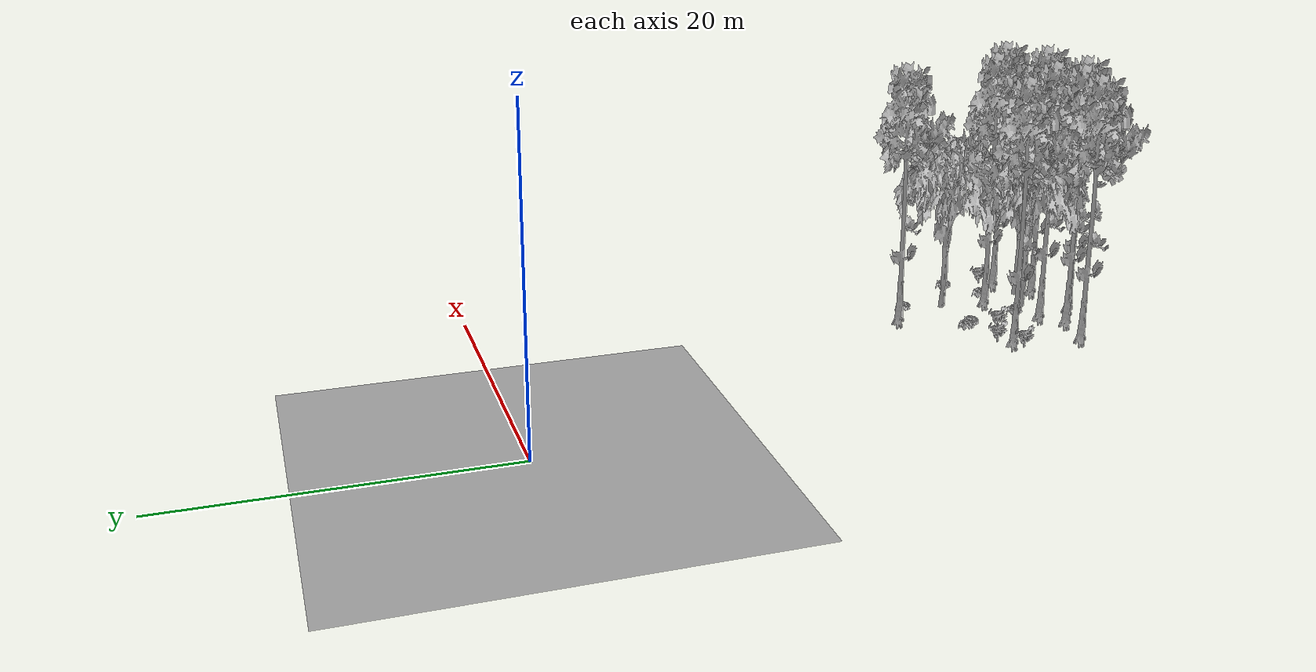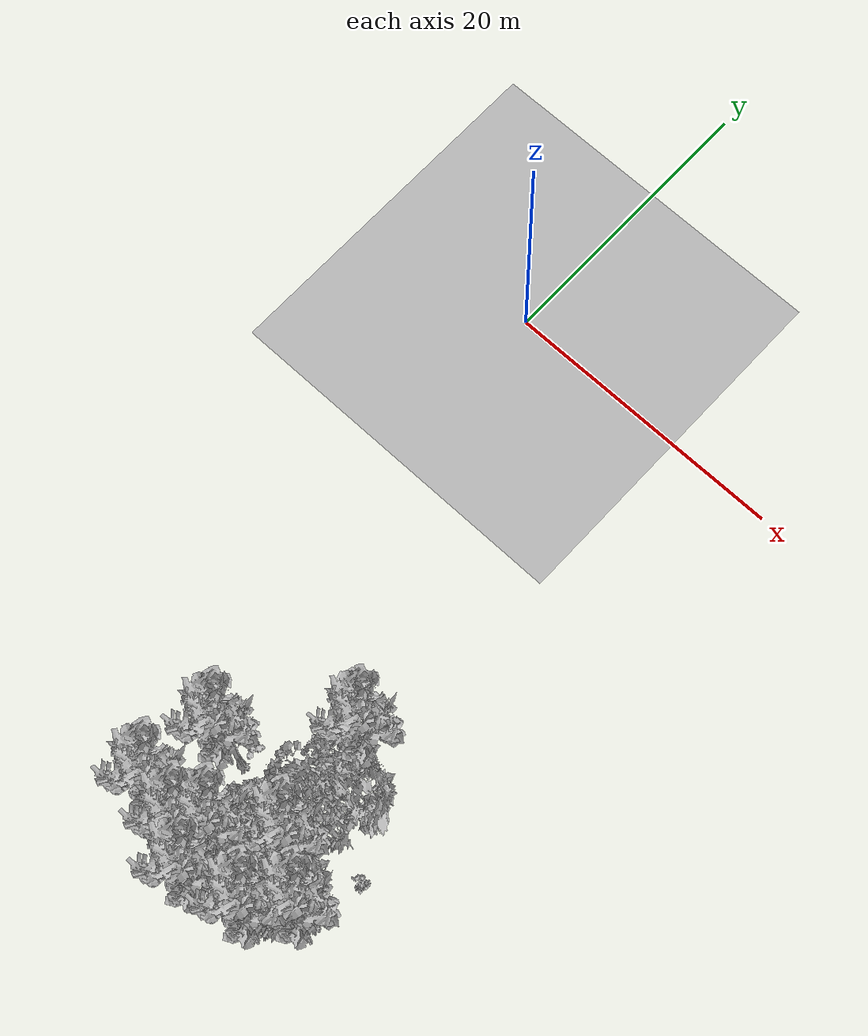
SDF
<sdf version="1.7">
 <world name="default">
  <model name="ground_plane">
   <static>1</static>
   <link name="link">
    <collision name="collision">
     <pose>-50 0 0 0 -0 0</pose>
     <geometry><plane><normal>0 0 1</normal><size>80 80</size></plane></geometry>
     <surface><contact><ode><min_depth>0.01</min_depth><max_vel>0</max_vel></ode></contact></surface>
    </collision>
    <visual name="grass">
     <cast_shadows>0</cast_shadows>
     <geometry>
      <mesh>
       <scale>0.46714285714285714 0.46714285714285714 0.1</scale>
       <uri>file://grass_plane/meshes/grass_plane.dae</uri>
      </mesh>
     </geometry>
    </visual>
   </link>
  </model>
  <model name="Tree 16">
   <static>1</static>
   <pose>16.97326211965948 -37.28798315173271 0 1.57079 -0 0</pose>
   <link name="link">
    <collision name="collision">
     <geometry><mesh><scale>3.5 5 3.5</scale><uri>model://tree_9/meshes/tree_9.obj</uri></mesh></geometry>
    </collision>
    <visual name="visual">
     <geometry><mesh><scale>3.5 5 3.5</scale><uri>model://tree_9/meshes/tree_9.obj</uri></mesh></geometry>
    </visual>
   </link>
  </model>
  <model name="Tree 31">
   <static>1</static>
   <pose>9.144035981788548 -38.37548184448518 0 1.57079 -0 0</pose>
   <link name="link">
    <collision name="collision">
     <geometry><mesh><scale>3.5 5 3.5</scale><uri>model://tree_9/meshes/tree_9.obj</uri></mesh></geometry>
    </collision>
    <visual name="visual">
     <geometry><mesh><scale>3.5 5 3.5</scale><uri>model://tree_9/meshes/tree_9.obj</uri></mesh></geometry>
    </visual>
   </link>
  </model>
  <model name="Tree 102">
   <static>1</static>
   <pose>12.106028545086744 -36.79047699876985 0 1.57079 -0 0</pose>
   <link name="link">
    <collision name="collision">
     <geometry><mesh><scale>3.5 5 3.5</scale><uri>model://tree_2/meshes/tree_2.obj</uri></mesh></geometry>
    </collision>
    <visual name="visual">
     <geometry><mesh><scale>3.5 5 3.5</scale><uri>model://tree_2/meshes/tree_2.obj</uri></mesh></geometry>
    </visual>
   </link>
  </model>
  <model name="Tree 195">
   <static>1</static>
   <pose>12.796358621361911 -27.912976611244087 0 1.57079 -0 0</pose>
   <link name="link">
    <collision name="collision">
     <geometry><mesh><scale>3.5 5 3.5</scale><uri>model://tree_9/meshes/tree_9.obj</uri></mesh></geometry>
    </collision>
    <visual name="visual">
     <geometry><mesh><scale>3.5 5 3.5</scale><uri>model://tree_9/meshes/tree_9.obj</uri></mesh></geometry>
    </visual>
   </link>
  </model>
  <model name="Tree 211">
   <static>1</static>
   <pose>14.915278013804773 -39.16089931412495 0 1.57079 -0 0</pose>
   <link name="link">
    <collision name="collision">
     <geometry><mesh><scale>3.5 5 3.5</scale><uri>model://tree_9/meshes/tree_9.obj</uri></mesh></geometry>
    </collision>
    <visual name="visual">
     <geometry><mesh><scale>3.5 5 3.5</scale><uri>model://tree_9/meshes/tree_9.obj</uri></mesh></geometry>
    </visual>
   </link>
  </model>
  <model name="Tree 221">
   <static>1</static>
   <pose>10.540902895440567 -37.217783714702186 0 1.57079 -0 0</pose>
   <link name="link">
    <collision name="collision">
     <geometry><mesh><scale>3.5 5 3.5</scale><uri>model://tree_9/meshes/tree_9.obj</uri></mesh></geometry>
    </collision>
    <visual name="visual">
     <geometry><mesh><scale>3.5 5 3.5</scale><uri>model://tree_9/meshes/tree_9.obj</uri></mesh></geometry>
    </visual>
   </link>
  </model>
  <model name="Tree 338">
   <static>1</static>
   <pose>13.005046432466365 -37.24556397848182 0 1.57079 -0 0</pose>
   <link name="link">
    <collision name="collision">
     <geometry><mesh><scale>3.5 5 3.5</scale><uri>model://tree_2/meshes/tree_2.obj</uri></mesh></geometry>
    </collision>
    <visual name="visual">
     <geometry><mesh><scale>3.5 5 3.5</scale><uri>model://tree_2/meshes/tree_2.obj</uri></mesh></geometry>
    </visual>
   </link>
  </model>
  <model name="Tree 394">
   <static>1</static>
   <pose>13.971111223837333 -34.94599494036752 0 1.57079 -0 0</pose>
   <link name="link">
    <collision name="collision">
     <geometry><mesh><scale>3.5 5 3.5</scale><uri>model://tree_9/meshes/tree_9.obj</uri></mesh></geometry>
    </collision>
    <visual name="visual">
     <geometry><mesh><scale>3.5 5 3.5</scale><uri>model://tree_9/meshes/tree_9.obj</uri></mesh></geometry>
    </visual>
   </link>
  </model>
  <model name="Tree 447">
   <static>1</static>
   <pose>11.315621273227244 -39.898316481184885 0 1.57079 -0 0</pose>
   <link name="link">
    <collision name="collision">
     <geometry><mesh><scale>3.5 5 3.5</scale><uri>model://tree_9/meshes/tree_9.obj</uri></mesh></geometry>
    </collision>
    <visual name="visual">
     <geometry><mesh><scale>3.5 5 3.5</scale><uri>model://tree_9/meshes/tree_9.obj</uri></mesh></geometry>
    </visual>
   </link>
  </model>
  <model name="Tree 456">
   <static>1</static>
   <pose>14.28537069663436 -37.54762773235817 0 1.57079 -0 0</pose>
   <link name="link">
    <collision name="collision">
     <geometry><mesh><scale>3.5 5 3.5</scale><uri>model://tree_2/meshes/tree_2.obj</uri></mesh></geometry>
    </collision>
    <visual name="visual">
     <geometry><mesh><scale>3.5 5 3.5</scale><uri>model://tree_2/meshes/tree_2.obj</uri></mesh></geometry>
    </visual>
   </link>
  </model>
  <model name="Tree 501">
   <static>1</static>
   <pose>7.103259774448375 -33.29173000395499 0 1.57079 -0 0</pose>
   <link name="link">
    <collision name="collision">
     <geometry><mesh><scale>3.5 5 3.5</scale><uri>model://tree_9/meshes/tree_9.obj</uri></mesh></geometry>
    </collision>
    <visual name="visual">
     <geometry><mesh><scale>3.5 5 3.5</scale><uri>model://tree_9/meshes/tree_9.obj</uri></mesh></geometry>
    </visual>
   </link>
  </model>
  <model name="Tree 587">
   <static>1</static>
   <pose>6.363678617081305 -37.76824734755111 0 1.57079 -0 0</pose>
   <link name="link">
    <collision name="collision">
     <geometry><mesh><scale>3.5 5 3.5</scale><uri>model://tree_9/meshes/tree_9.obj</uri></mesh></geometry>
    </collision>
    <visual name="visual">
     <geometry><mesh><scale>3.5 5 3.5</scale><uri>model://tree_9/meshes/tree_9.obj</uri></mesh></geometry>
    </visual>
   </link>
  </model>
  <model name="Tree 630">
   <static>1</static>
   <pose>13.610166151094113 -31.55372107421779 0 1.57079 -0 0</pose>
   <link name="link">
    <collision name="collision">
     <geometry><mesh><scale>3.5 5 3.5</scale><uri>model://tree_2/meshes/tree_2.obj</uri></mesh></geometry>
    </collision>
    <visual name="visual">
     <geometry><mesh><scale>3.5 5 3.5</scale><uri>model://tree_2/meshes/tree_2.obj</uri></mesh></geometry>
    </visual>
   </link>
  </model>
  <model name="Bush 52">
   <static>1</static>
   <pose>16.98256907232257 -36.12276507672017 0 1.57079 -0 0</pose>
   <link name="link">
    <collision name="collision">
     <geometry><mesh><scale>2 2 2</scale><uri>model://bush_0/meshes/bush_0.obj</uri></mesh></geometry>
     <surface><contact><collide_without_contact>false</collide_without_contact></contact></surface>
    </collision>
    <visual name="visual">
     <geometry><mesh><scale>2 2 2</scale><uri>model://bush_0/meshes/bush_0.obj</uri></mesh></geometry>
    </visual>
   </link>
  </model>
  <model name="Bush 107">
   <static>1</static>
   <pose>14.285042737893718 -28.987726939497822 0 1.57079 -0 0</pose>
   <link name="link">
    <collision name="collision">
     <geometry><mesh><scale>2 2 2</scale><uri>model://bush_2/meshes/bush_2.obj</uri></mesh></geometry>
     <surface><contact><collide_without_contact>false</collide_without_contact></contact></surface>
    </collision>
    <visual name="visual">
     <geometry><mesh><scale>2 2 2</scale><uri>model://bush_2/meshes/bush_2.obj</uri></mesh></geometry>
    </visual>
   </link>
  </model>
  <model name="Bush 115">
   <static>1</static>
   <pose>7.109134944741925 -32.09582787601274 0 1.57079 -0 0</pose>
   <link name="link">
    <collision name="collision">
     <geometry><mesh><scale>2 2 2</scale><uri>model://bush_0/meshes/bush_0.obj</uri></mesh></geometry>
     <surface><contact><collide_without_contact>false</collide_without_contact></contact></surface>
    </collision>
    <visual name="visual">
     <geometry><mesh><scale>2 2 2</scale><uri>model://bush_0/meshes/bush_0.obj</uri></mesh></geometry>
    </visual>
   </link>
  </model>
  <model name="Bush 127">
   <static>1</static>
   <pose>5.801647310828798 -33.270941467596856 0 1.57079 -0 0</pose>
   <link name="link">
    <collision name="collision">
     <geometry><mesh><scale>2 2 2</scale><uri>model://bush_0/meshes/bush_0.obj</uri></mesh></geometry>
     <surface><contact><collide_without_contact>false</collide_without_contact></contact></surface>
    </collision>
    <visual name="visual">
     <geometry><mesh><scale>2 2 2</scale><uri>model://bush_0/meshes/bush_0.obj</uri></mesh></geometry>
    </visual>
   </link>
  </model>
  <model name="Bush 138">
   <static>1</static>
   <pose>17.22192983415028 -33.550955938983265 0 1.57079 -0 0</pose>
   <link name="link">
    <collision name="collision">
     <geometry><mesh><scale>2 2 2</scale><uri>model://bush_2/meshes/bush_2.obj</uri></mesh></geometry>
     <surface><contact><collide_without_contact>false</collide_without_contact></contact></surface>
    </collision>
    <visual name="visual">
     <geometry><mesh><scale>2 2 2</scale><uri>model://bush_2/meshes/bush_2.obj</uri></mesh></geometry>
    </visual>
   </link>
  </model>
  <model name="Bush 473">
   <static>1</static>
   <pose>10.070242468048967 -31.534386884685954 0 1.57079 -0 0</pose>
   <link name="link">
    <collision name="collision">
     <geometry><mesh><scale>2 2 2</scale><uri>model://bush_2/meshes/bush_2.obj</uri></mesh></geometry>
     <surface><contact><collide_without_contact>false</collide_without_contact></contact></surface>
    </collision>
    <visual name="visual">
     <geometry><mesh><scale>2 2 2</scale><uri>model://bush_2/meshes/bush_2.obj</uri></mesh></geometry>
    </visual>
   </link>
  </model>
  <model name="Bush 499">
   <static>1</static>
   <pose>9.312679488107634 -33.32271147251377 0 1.57079 -0 0</pose>
   <link name="link">
    <collision name="collision">
     <geometry><mesh><scale>2 2 2</scale><uri>model://bush_0/meshes/bush_0.obj</uri></mesh></geometry>
     <surface><contact><collide_without_contact>false</collide_without_contact></contact></surface>
    </collision>
    <visual name="visual">
     <geometry><mesh><scale>2 2 2</scale><uri>model://bush_0/meshes/bush_0.obj</uri></mesh></geometry>
    </visual>
   </link>
  </model>
  <model name="Bush 521">
   <static>1</static>
   <pose>15.056703978269667 -35.247756266780414 0 1.57079 -0 0</pose>
   <link name="link">
    <collision name="collision">
     <geometry><mesh><scale>2 2 2</scale><uri>model://bush_2/meshes/bush_2.obj</uri></mesh></geometry>
     <surface><contact><collide_without_contact>false</collide_without_contact></contact></surface>
    </collision>
    <visual name="visual">
     <geometry><mesh><scale>2 2 2</scale><uri>model://bush_2/meshes/bush_2.obj</uri></mesh></geometry>
    </visual>
   </link>
  </model>
  <model name="Bush 632">
   <static>1</static>
   <pose>10.542501486228915 -32.12783379114931 0 1.57079 -0 0</pose>
   <link name="link">
    <collision name="collision">
     <geometry><mesh><scale>2 2 2</scale><uri>model://bush_2/meshes/bush_2.obj</uri></mesh></geometry>
     <surface><contact><collide_without_contact>false</collide_without_contact></contact></surface>
    </collision>
    <visual name="visual">
     <geometry><mesh><scale>2 2 2</scale><uri>model://bush_2/meshes/bush_2.obj</uri></mesh></geometry>
    </visual>
   </link>
  </model>
  <model name="Bush 637">
   <static>1</static>
   <pose>11.47573715564613 -35.91893273514485 0 1.57079 -0 0</pose>
   <link name="link">
    <collision name="collision">
     <geometry><mesh><scale>2 2 2</scale><uri>model://bush_2/meshes/bush_2.obj</uri></mesh></geometry>
     <surface><contact><collide_without_contact>false</collide_without_contact></contact></surface>
    </collision>
    <visual name="visual">
     <geometry><mesh><scale>2 2 2</scale><uri>model://bush_2/meshes/bush_2.obj</uri></mesh></geometry>
    </visual>
   </link>
  </model>
 </world>
</sdf>
